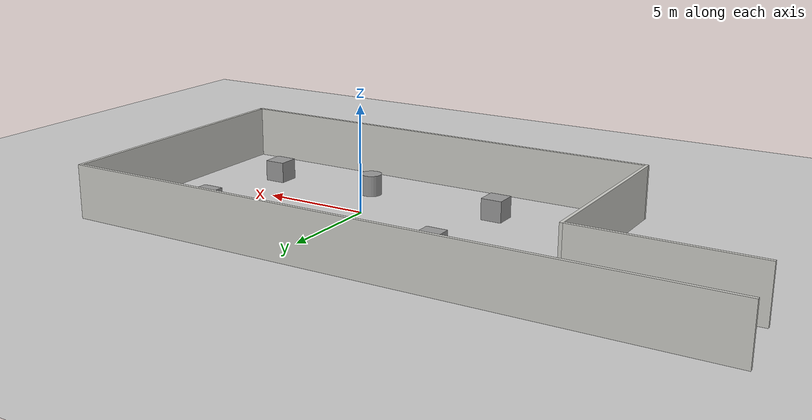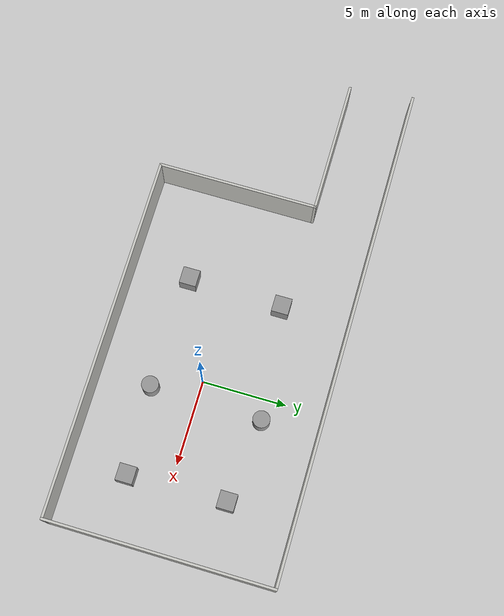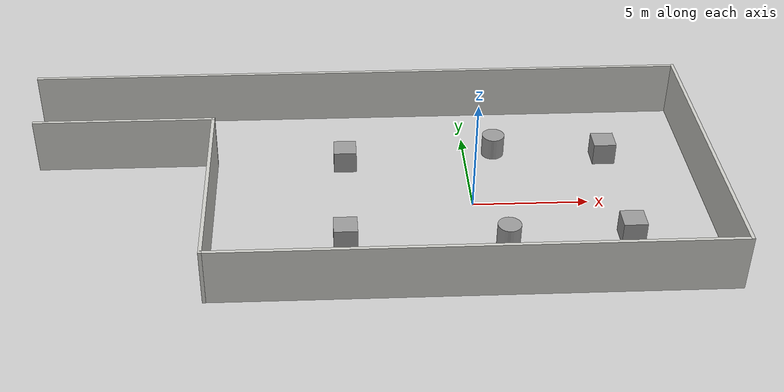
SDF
<sdf version="1.7">
 <world name="default">
  <light name="sun" type="directional">
   <pose>0 0 10 0 -0 0</pose>
   <diffuse>0.8 0.8 0.8 1</diffuse>
   <specular>0.2 0.2 0.2 1</specular>
   <attenuation>
    <range>1000</range>
    <constant>0.9</constant>
    <linear>0.01</linear>
    <quadratic>0.001</quadratic>
   </attenuation>
   <direction>-0.5 0.1 -0.9</direction>
   <spot><inner_angle>0</inner_angle><outer_angle>0</outer_angle><falloff>0</falloff></spot>
  </light>
  <model name="ground_plane">
   <static>1</static>
   <link name="link">
    <collision name="collision">
     <geometry><plane><normal>0 0 1</normal><size>100 100</size></plane></geometry>
     <surface>
      <contact><collide_bitmask>65535</collide_bitmask></contact>
      <friction><ode><mu>100</mu><mu2>50</mu2></ode></friction>
     </surface>
    </collision>
    <visual name="visual">
     <cast_shadows>0</cast_shadows>
     <geometry><plane><normal>0 0 1</normal><size>100 100</size></plane></geometry>
     <material>
      <script><uri>file://media/materials/scripts/gazebo.material</uri><name>Gazebo/Grey</name></script>
     </material>
    </visual>
   </link>
  </model>
  <gravity>0 0 -9.8</gravity>
  <magnetic_field>6e-06 2.3e-05 -4.2e-05</magnetic_field>
  <atmosphere type="adiabatic"/>
  <physics type="ode">
   <max_step_size>0.001</max_step_size>
   <real_time_factor>1</real_time_factor>
   <real_time_update_rate>1000</real_time_update_rate>
  </physics>
  <scene><ambient>0.4 0.4 0.4 1</ambient><background>0.7 0.7 0.7 1</background><shadows>1</shadows></scene>
  <spherical_coordinates>
   <surface_model>EARTH_WGS84</surface_model>
   <latitude_deg>0</latitude_deg>
   <longitude_deg>0</longitude_deg>
   <elevation>0</elevation>
   <heading_deg>0</heading_deg>
  </spherical_coordinates>
  <model name="model333">
   <pose>-4.68985 0.653549 0 0 -0 0</pose>
   <link name="Wall_0">
    <collision name="Wall_0_Collision">
     <geometry><box><size>29.75 0.15 2.5</size></box></geometry>
     <pose>0 0 1.25 0 -0 0</pose>
    </collision>
    <visual name="Wall_0_Visual">
     <pose>0 0 1.25 0 -0 0</pose>
     <geometry><box><size>29.75 0.15 2.5</size></box></geometry>
     <material>
      <script><uri>file://media/materials/scripts/gazebo.material</uri><name>Gazebo/CeilingTiled</name></script>
      <ambient>1 1 1 1</ambient>
     </material>
     <meta><layer>0</layer></meta>
    </visual>
    <pose>-0 6.55 0 0 -0 0</pose>
   </link>
   <link name="Wall_1">
    <collision name="Wall_1_Collision">
     <geometry><box><size>13.25 0.15 2.5</size></box></geometry>
     <pose>0 0 1.25 0 -0 0</pose>
    </collision>
    <visual name="Wall_1_Visual">
     <pose>0 0 1.25 0 -0 0</pose>
     <geometry><box><size>13.25 0.15 2.5</size></box></geometry>
     <material>
      <script><uri>file://media/materials/scripts/gazebo.material</uri><name>Gazebo/CeilingTiled</name></script>
      <ambient>0.921569 0.807843 0.615686 1</ambient>
     </material>
     <meta><layer>0</layer></meta>
    </visual>
    <pose>14.8 0 0 0 -0 -1.5708</pose>
   </link>
   <link name="Wall_5">
    <collision name="Wall_5_Collision">
     <geometry><box><size>21.5 0.15 2.5</size></box></geometry>
     <pose>0 0 1.25 0 -0 0</pose>
    </collision>
    <visual name="Wall_5_Visual">
     <pose>0 0 1.25 0 -0 0</pose>
     <geometry><box><size>21.5 0.15 2.5</size></box></geometry>
     <material>
      <script><uri>file://media/materials/scripts/gazebo.material</uri><name>Gazebo/CeilingTiled</name></script>
      <ambient>1 1 1 1</ambient>
     </material>
     <meta><layer>0</layer></meta>
    </visual>
    <pose>4.125 -6.55 0 0 -0 3.14159</pose>
   </link>
   <link name="Wall_6">
    <collision name="Wall_6_Collision">
     <geometry><box><size>9.5 0.15 2.5</size></box></geometry>
     <pose>0 0 1.25 0 -0 0</pose>
    </collision>
    <visual name="Wall_6_Visual">
     <pose>0 0 1.25 0 -0 0</pose>
     <geometry><box><size>9.5 0.15 2.5</size></box></geometry>
     <material>
      <script><uri>file://media/materials/scripts/gazebo.material</uri><name>Gazebo/CeilingTiled</name></script>
      <ambient>1 1 1 1</ambient>
     </material>
     <meta><layer>0</layer></meta>
    </visual>
    <pose>-6.55 -1.875 0 0 -0 1.5708</pose>
   </link>
   <link name="Wall_7">
    <collision name="Wall_7_Collision">
     <geometry><box><size>8 0.15 2.5</size></box></geometry>
     <pose>0 0 1.25 0 -0 0</pose>
    </collision>
    <visual name="Wall_7_Visual">
     <pose>0 0 1.25 0 -0 0</pose>
     <geometry><box><size>8 0.15 2.5</size></box></geometry>
     <material>
      <script><uri>file://media/materials/scripts/gazebo.material</uri><name>Gazebo/CeilingTiled</name></script>
      <ambient>1 1 1 1</ambient>
     </material>
     <meta><layer>0</layer></meta>
    </visual>
    <pose>-10.475 2.8 0 0 -0 3.14159</pose>
   </link>
   <static>1</static>
  </model>
  <model name="unit_box">
   <pose>6.24488 3.3306 0.499995 -1e-05 -0 -0</pose>
   <link name="link">
    <inertial>
     <mass>1</mass>
     <inertia>
      <ixx>0.166667</ixx>
      <ixy>0</ixy>
      <ixz>0</ixz>
      <iyy>0.166667</iyy>
      <iyz>0</iyz>
      <izz>0.166667</izz>
     </inertia>
    </inertial>
    <collision name="collision"><geometry><box><size>1 1 1</size></box></geometry></collision>
    <visual name="visual">
     <geometry><box><size>1 1 1</size></box></geometry>
     <material>
      <script><name>Gazebo/Grey</name><uri>file://media/materials/scripts/gazebo.material</uri></script>
     </material>
    </visual>
   </link>
  </model>
  <model name="unit_box_0">
   <pose>6.38366 -2.49796 0.499995 0 1e-05 0</pose>
   <link name="link">
    <inertial>
     <mass>1</mass>
     <inertia>
      <ixx>0.166667</ixx>
      <ixy>0</ixy>
      <ixz>0</ixz>
      <iyy>0.166667</iyy>
      <iyz>0</iyz>
      <izz>0.166667</izz>
     </inertia>
    </inertial>
    <collision name="collision"><geometry><box><size>1 1 1</size></box></geometry></collision>
    <visual name="visual">
     <geometry><box><size>1 1 1</size></box></geometry>
     <material>
      <script><name>Gazebo/Grey</name><uri>file://media/materials/scripts/gazebo.material</uri></script>
     </material>
    </visual>
   </link>
  </model>
  <model name="unit_box_1">
   <pose>-5.5857 -2.46326 0.499995 -1e-05 -0 -0</pose>
   <link name="link">
    <inertial>
     <mass>1</mass>
     <inertia>
      <ixx>0.166667</ixx>
      <ixy>0</ixy>
      <ixz>0</ixz>
      <iyy>0.166667</iyy>
      <iyz>0</iyz>
      <izz>0.166667</izz>
     </inertia>
    </inertial>
    <collision name="collision"><geometry><box><size>1 1 1</size></box></geometry></collision>
    <visual name="visual">
     <geometry><box><size>1 1 1</size></box></geometry>
     <material>
      <script><name>Gazebo/Grey</name><uri>file://media/materials/scripts/gazebo.material</uri></script>
     </material>
    </visual>
   </link>
  </model>
  <model name="unit_box_2">
   <pose>-5.44691 3.15714 0.499995 0 1e-05 0</pose>
   <link name="link">
    <inertial>
     <mass>1</mass>
     <inertia>
      <ixx>0.166667</ixx>
      <ixy>0</ixy>
      <ixz>0</ixz>
      <iyy>0.166667</iyy>
      <iyz>0</iyz>
      <izz>0.166667</izz>
     </inertia>
    </inertial>
    <collision name="collision"><geometry><box><size>1 1 1</size></box></geometry></collision>
    <visual name="visual">
     <geometry><box><size>1 1 1</size></box></geometry>
     <material>
      <script><name>Gazebo/Grey</name><uri>file://media/materials/scripts/gazebo.material</uri></script>
     </material>
    </visual>
   </link>
  </model>
  <model name="unit_cylinder">
   <pose>1.31837 3.8857 0.499993 -3e-06 -4e-06 -0</pose>
   <link name="link">
    <inertial>
     <mass>1</mass>
     <inertia><ixx>0.145833</ixx><ixy>0</ixy><ixz>0</ixz><iyy>0.145833</iyy><iyz>0</iyz><izz>0.125</izz></inertia>
    </inertial>
    <collision name="collision">
     <geometry><cylinder><radius>0.5</radius><length>1</length></cylinder></geometry>
    </collision>
    <visual name="visual">
     <geometry><cylinder><radius>0.5</radius><length>1</length></cylinder></geometry>
     <material>
      <script><name>Gazebo/Grey</name><uri>file://media/materials/scripts/gazebo.material</uri></script>
     </material>
    </visual>
   </link>
  </model>
  <model name="unit_cylinder_0">
   <pose>1.17959 -2.74081 0.499997 3e-06 4e-06 -0</pose>
   <link name="link">
    <inertial>
     <mass>1</mass>
     <inertia><ixx>0.145833</ixx><ixy>0</ixy><ixz>0</ixz><iyy>0.145833</iyy><iyz>0</iyz><izz>0.125</izz></inertia>
    </inertial>
    <collision name="collision">
     <geometry><cylinder><radius>0.5</radius><length>1</length></cylinder></geometry>
    </collision>
    <visual name="visual">
     <geometry><cylinder><radius>0.5</radius><length>1</length></cylinder></geometry>
     <material>
      <script><name>Gazebo/Grey</name><uri>file://media/materials/scripts/gazebo.material</uri></script>
     </material>
    </visual>
   </link>
  </model>
 </world>
</sdf>
